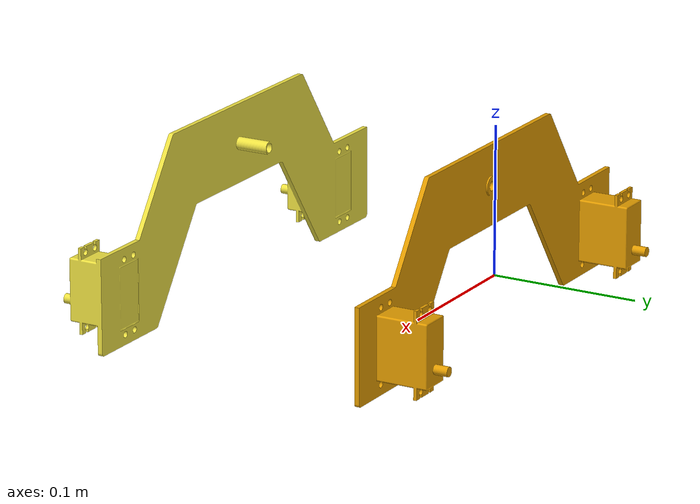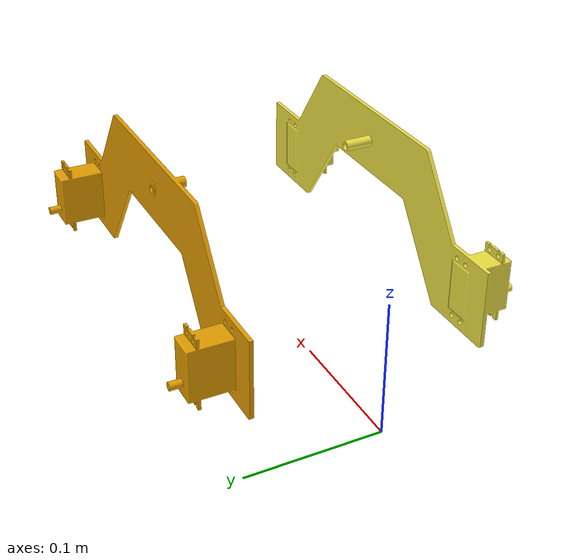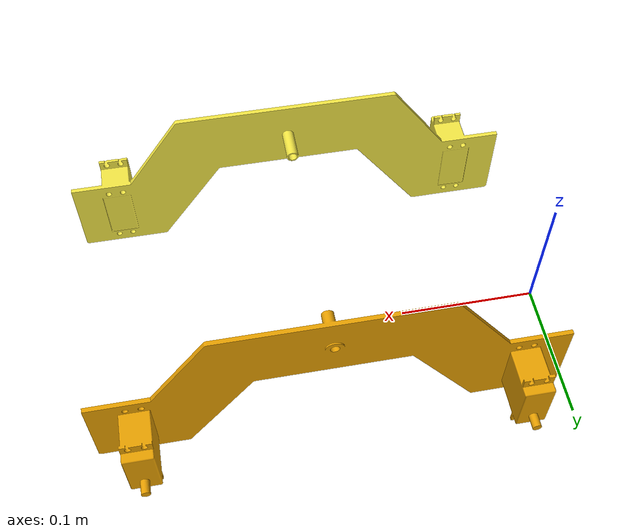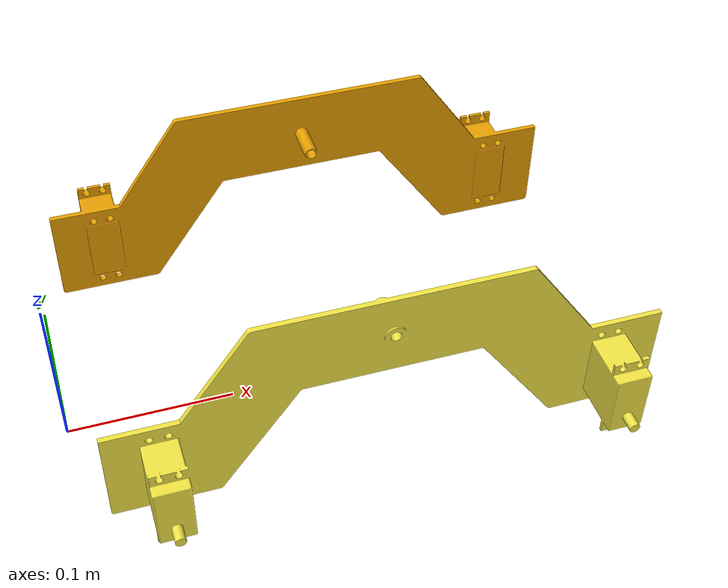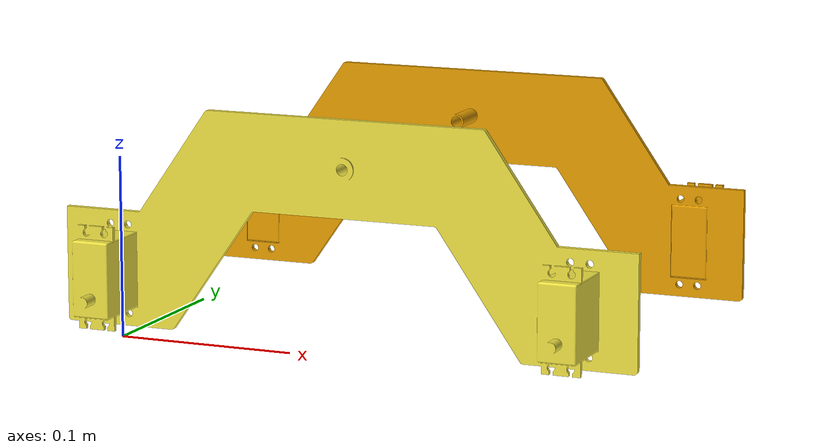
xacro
<?xml version="1.0"?>
<robot name="lb01" xmlns:xacro="http://ros.org/wiki/xacro">

  <xacro:include filename="$(find lb01_description)/robots/lb01_basic.urdf.xacro"/>

  <joint name="lrf_motor_joint" type="continuous">
    <origin xyz="0.08857 0 0.05756" rpy="${-M_PI/2} 0 0"/>
    <parent link="base_link"/>
    <child link="lrf_motor_link"/>
    <axis xyz="0 0 -1"/>
  </joint>
  <link name="lrf_motor_link"/>

  <joint name="lrf_joint" type="fixed">
    <origin xyz="0.0675 -0.0023 0" rpy="${M_PI/2} 0 0"/>
    <parent link="lrf_motor_link"/>
    <child link="lrf_link"/>
  </joint>
  <link name="lrf_link"/>
</robot>

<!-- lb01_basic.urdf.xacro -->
<robot name="lb01" xmlns:xacro="http://ros.org/wiki/xacro">

  <xacro:include filename="$(find lb01_description)/urdf/base/base.urdf.xacro"/>
  <xacro:include filename="$(find lb01_description)/urdf/legs/wheel/wheel.urdf.xacro"/>
  <xacro:include filename="$(find lb01_description)/urdf/legs/bogie/bogie.urdf.xacro"/>
  <xacro:include filename="$(find lb01_description)/urdf/legs/rocker/rocker.urdf.xacro"/>

  <!-- =============== Link & Joint =============== -->
  <!-- Base -->
  <link name="base_footprint"/>
  <xacro:base_v0 parent="base_footprint">
	<origin xyz="0 0 0.15497"/>
  </xacro:base_v0>

  <!-- Legs -->
  <!-- Right -->
  <!-- Rocker -->
  <xacro:rocker_v0 prefix="right">
    <origin xyz="0.045 -0.077 0" rpy="${-M_PI/2} 0 0"/>
    <axis xyz="0 0 1"/>
  </xacro:rocker_v0>
  <!-- Bogie -->
  <xacro:bogie_v0 prefix="right">
    <origin xyz="0.125 0.035 -0.008" rpy="0 0 ${M_PI}"/>
    <axis xyz="0 0 1"/>
  </xacro:bogie_v0>
  <!-- Wheel -->
  <xacro:wheel_v0 prefix="right_front" parent="right_bogie_link">
    <origin xyz="-0.125 -0.070 -0.0295" rpy="0 0 ${-M_PI/2}"/>
    <axis xyz="0 0 1"/>
  </xacro:wheel_v0>
  <xacro:wheel_v0 prefix="right_middle" parent="right_bogie_link">
    <origin xyz="0.125 -0.070 -0.0295" rpy="0 0 ${-M_PI/2}"/>
    <axis xyz="0 0 1"/>
  </xacro:wheel_v0>
  <xacro:wheel_v0 prefix="right_rear" parent="right_rocker_link">
    <origin xyz="-0.250 0.105 0.0325" rpy="0 0 ${M_PI/2}"/>
    <axis xyz="0 0 1"/>
  </xacro:wheel_v0>

  <!-- Left -->
  <!-- Rocker -->
  <xacro:rocker_v0 prefix="left">
    <origin xyz="0.045 0.077 0" rpy="${M_PI/2} 0 0"/>
    <axis xyz="0 0 -1"/>
  </xacro:rocker_v0>
  <!-- Bogie -->
  <xacro:bogie_v0 prefix="left">
    <origin xyz="0.125 -0.035 -0.008" rpy="0 0 0"/>
    <axis xyz="0 0 -1"/>
  </xacro:bogie_v0>
  <!-- Wheel -->
  <xacro:wheel_v0 prefix="left_front" parent="left_bogie_link">
    <origin xyz="0.125 -0.070 -0.0295" rpy="0 0 ${-M_PI/2}"/>
    <axis xyz="0 0 -1"/>
  </xacro:wheel_v0>
  <xacro:wheel_v0 prefix="left_middle" parent="left_bogie_link">
    <origin xyz="-0.125 -0.070 -0.0295" rpy="0 0 ${-M_PI/2}"/>
    <axis xyz="0 0 -1"/>
  </xacro:wheel_v0>
  <xacro:wheel_v0 prefix="left_rear" parent="left_rocker_link">
    <origin xyz="-0.250 -0.105 -0.0325" rpy="0 0 ${-M_PI/2}"/>
    <axis xyz="0 0 -1"/>
  </xacro:wheel_v0>

</robot>

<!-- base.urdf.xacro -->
<robot xmlns:xacro="http://ros.org/wiki/xacro">

  <xacro:include filename="$(find lb01_description)/urdf/base/base.gazebo.xacro"/>

  <xacro:macro name="base_v0" params="parent *joint_origin">
	<joint name="base_link_joint" type="fixed">
	  <insert_block name="joint_origin"/>
	  <parent link="${parent}"/>
	  <child link="base_link"/>
	</joint>

	<link name="base_link">
	  <!--   		 iyy="2.24766" iyz="0" -->
	</link>
  </xacro:macro>

</robot>

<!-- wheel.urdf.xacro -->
<robot xmlns:xacro="http://ros.org/wiki/xacro">

  <xacro:include filename="$(find lb01_description)/urdf/common.xacro"/>

  <property name="wheel_radius" value="0.20316"/>
  <property name="wheel_length" value="0.032"/>
  <property name="wheel_mass" value="2.0"/>

  <xacro:macro name="wheel_v0" params="prefix parent *joint_origin *joint_axis">
	<joint name="${prefix}_wheel_joint" type="continuous">
	  <insert_block name="joint_origin"/>
	  <parent link="${parent}"/>
	  <child link="${prefix}_wheel_link"/>
	  <insert_block name="joint_axis"/>
	</joint>

	<link name="${prefix}_wheel_link">
	</link>
  </xacro:macro>

</robot>

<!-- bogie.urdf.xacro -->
<robot xmlns:xacro="http://ros.org/wiki/xacro">

  <xacro:include filename="$(find lb01_description)/urdf/common.xacro"/>

  <property name="bogie_radius" value="0.20316"/>
  <property name="bogie_length" value="0.032"/>
  <property name="bogie_mass" value="2.0"/>

  <xacro:macro name="bogie_v0" params="prefix *joint_origin *joint_axis">
	<joint name="${prefix}_bogie_joint" type="continuous">
	  <insert_block name="joint_origin"/>
	  <parent link="${prefix}_rocker_link"/>
	  <child link="${prefix}_bogie_link"/>
	  <insert_block name="joint_axis"/>
	</joint>

	<link name="${prefix}_bogie_link">
	  <visual>
	    <geometry>
	      <mesh filename="package://lb01_description/meshes/visual/legs/bogie/bogie_link.dae"/>
	    </geometry>
	  </visual>
	  <collision>
        <mesh filename="package://lb01_description/meshes/collision/legs/bogie/bogie_link.STL"/>
	  </collision>
	  <inertial>
    	<mass value="0.11151246"/>
	    <inertia ixx="0.00033494" ixy="0.00000012" ixz="0.00000000"
	    		 iyy="0.00133444" iyz="0.00006524"
	    		 izz="0.00161857" />
	  </inertial>
	</link>
  </xacro:macro>

</robot>

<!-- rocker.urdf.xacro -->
<robot xmlns:xacro="http://ros.org/wiki/xacro">

  <xacro:include filename="$(find lb01_description)/urdf/common.xacro"/>

  <property name="rocker_radius" value="0.20316"/>
  <property name="rocker_length" value="0.032"/>
  <property name="rocker_mass" value="2.0"/>

  <xacro:macro name="rocker_v0" params="prefix *joint_origin *joint_axis">
	<joint name="${prefix}_rocker_joint" type="continuous">
	  <insert_block name="joint_origin"/>
	  <parent link="base_link"/>
	  <child link="${prefix}_rocker_link"/>
	  <insert_block name="joint_axis"/>
	</joint>

	<link name="${prefix}_rocker_link">
	</link>
  </xacro:macro>

</robot>
